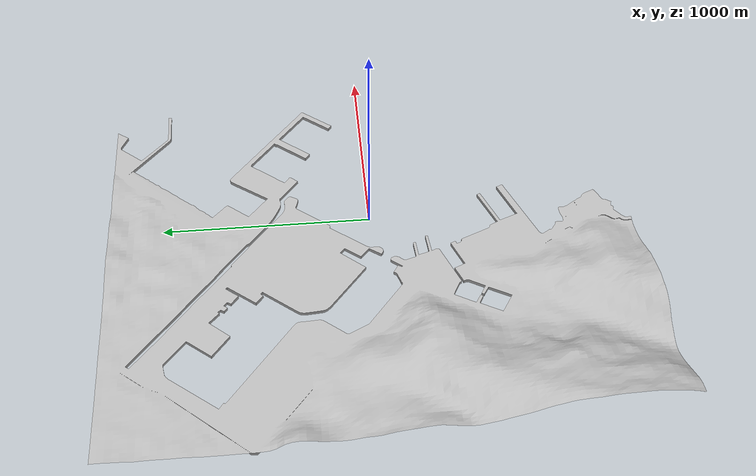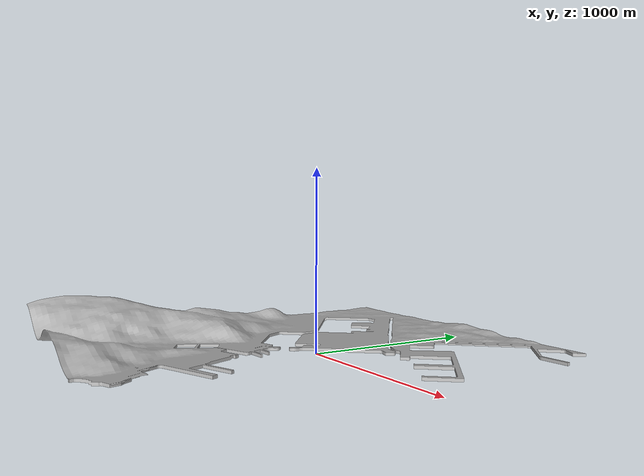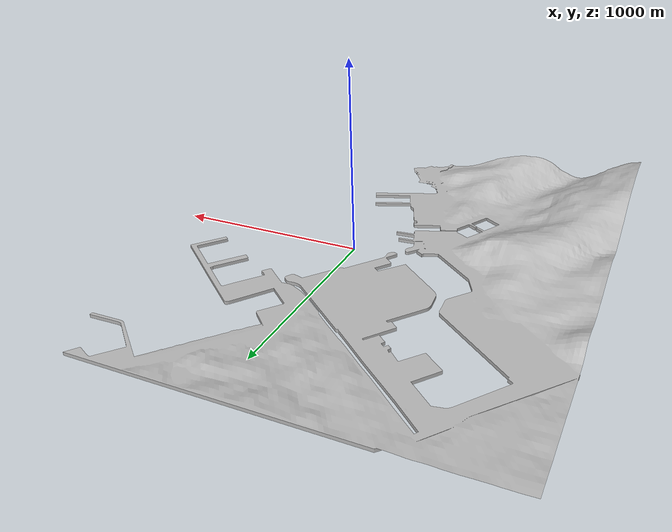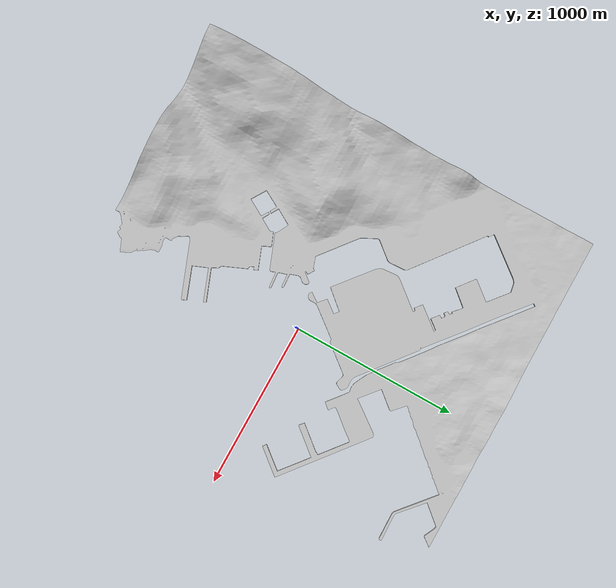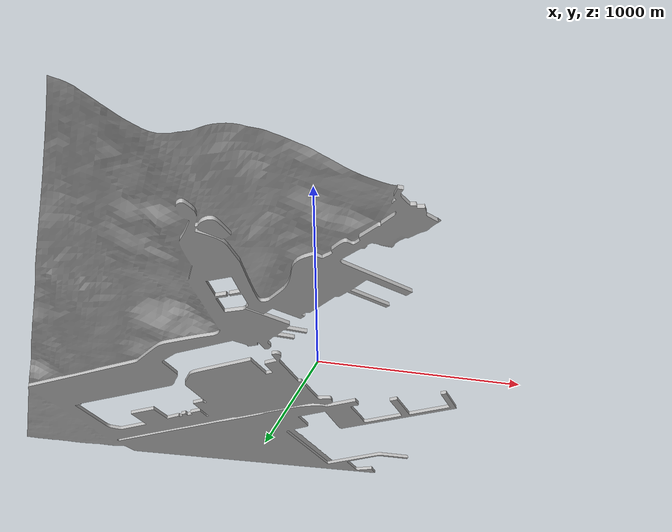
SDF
<?xml version="1.0" encoding="UTF-8"?>
<sdf version="1.6">
  <model name="marina">
    <static>true</static>
    <link name="link">
      <pose>-10 -10 0 1.570796 0 0</pose>
      <visual name="visual">
        <geometry>
          <mesh>
            <uri>file:///Users/matthew.huang/dev_ws/src/my_package/models/marina/meshes/terrain.dae</uri>
          </mesh>
        </geometry>
      </visual>
      <collision name="collision">
        <geometry>
          <mesh>
            <uri>file:///Users/matthew.huang/dev_ws/src/my_package/models/marina/meshes/terrain.dae</uri>
          </mesh>
        </geometry>
      </collision>
    </link>
  </model>
</sdf>
